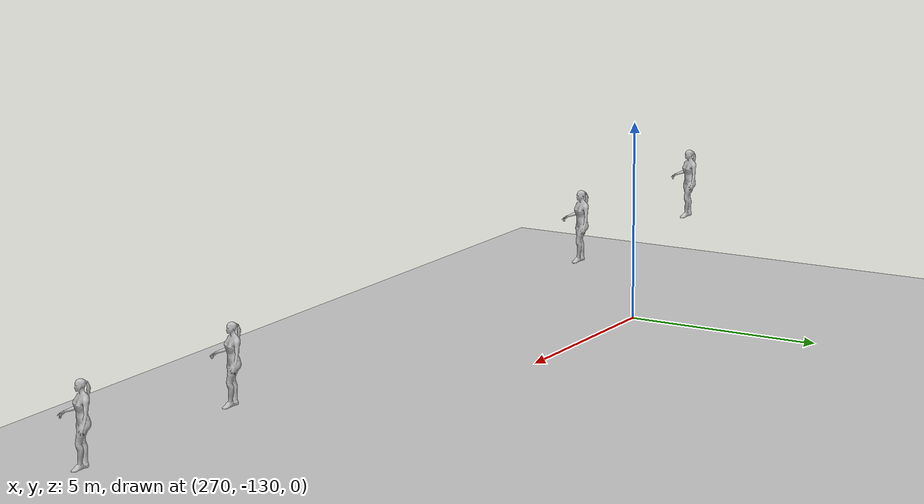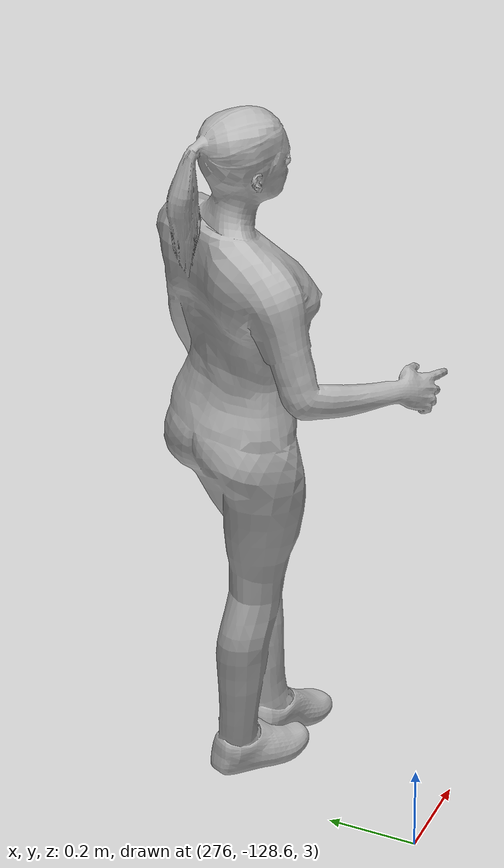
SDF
<sdf version="1.12">
 <world name="new_custom_world_v3">
  <physics type="ode">
   <max_step_size>0.0040000000000000001</max_step_size>
   <real_time_factor>1</real_time_factor>
   <real_time_update_rate>250</real_time_update_rate>
  </physics>
  <gravity>0 0 -9.8000000000000007</gravity>
  <magnetic_field>6.0000000000000002e-06 2.3e-05 -4.1999999999999998e-05</magnetic_field>
  <atmosphere type="adiabatic"/>
  <scene>
   <grid>false</grid>
   <ambient>0.400000006 0.400000006 0.400000006 1</ambient>
   <background>0.699999988 0.699999988 0.699999988 1</background>
   <shadows>true</shadows>
  </scene>
  <spherical_coordinates>
   <surface_model>EARTH_WGS84</surface_model>
   <world_frame_orientation>ENU</world_frame_orientation>
   <latitude_deg>47.397971057728974</latitude_deg>
   <longitude_deg>8.5461637398001464</longitude_deg>
   <elevation>0</elevation>
   <heading_deg>0</heading_deg>
  </spherical_coordinates>
  <model name="ground_plane">
   <static>true</static>
   <link name="link">
    <collision name="collision">
     <geometry><plane><normal>0 0 1</normal><size>1 1</size></plane></geometry>
    </collision>
    <visual name="visual">
     <geometry><plane><normal>0 0 1</normal><size>100 100</size></plane></geometry>
     <material>
      <ambient>0.800000012 0.800000012 0.800000012 1</ambient>
      <diffuse>0.800000012 0.800000012 0.800000012 1</diffuse>
      <specular>0.800000012 0.800000012 0.800000012 1</specular>
     </material>
    </visual>
    <inertial>
     <mass>1</mass>
     <inertia><ixx>1</ixx><ixy>0</ixy><ixz>0</ixz><iyy>1</iyy><iyz>0</iyz><izz>1</izz></inertia>
    </inertial>
   </link>
  </model>
  <include>
   <uri>file:///home/sstarokozhev/PX4-Autopilot/Tools/simulation/gz/models/casual_female</uri>
   <name>female_1</name>
   <pose>276.17999267578125 -128.10200500488281 2.9636299610137939 0 0 1.0163669196705514</pose>
  </include>
  <include>
   <uri>file:///home/sstarokozhev/PX4-Autopilot/Tools/simulation/gz/models/casual_female</uri>
   <name>female_1_1</name>
   <pose>294.33717974419278 -128.10200500488281 2.9636299610137939 0 0 1.0163700170087691</pose>
  </include>
  <include>
   <uri>file:///home/sstarokozhev/PX4-Autopilot/Tools/simulation/gz/models/casual_female</uri>
   <name>female_1_1_1</name>
   <pose>289.80876289846617 -128.10200500488281 2.9636299610137939 0 0 1.0163700170087691</pose>
  </include>
  <include>
   <uri>file:///home/sstarokozhev/PX4-Autopilot/Tools/simulation/gz/models/casual_female</uri>
   <name>female_1_1_2</name>
   <pose>270.71909887311438 -128.10200500488281 2.9636299610137939 0 0 1.0163700170087691</pose>
  </include>
  <light name="sunUTC" type="directional">
   <pose>0 0 500 0 0 0</pose>
   <intensity>1</intensity>
   <direction>0.001 0.625 -0.78000000000000003</direction>
   <diffuse>0.903999984 0.903999984 0.903999984 1</diffuse>
   <specular>0.270999998 0.270999998 0.270999998 1</specular>
   <attenuation><range>2000</range><linear>0</linear><constant>1</constant><quadratic>0</quadratic></attenuation>
   <spot><inner_angle>0</inner_angle><outer_angle>0</outer_angle><falloff>0</falloff></spot>
  </light>
 </world>
</sdf>

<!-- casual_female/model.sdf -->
<sdf version="1.5">
  <model name="casual_female">
    <static>true</static>
    <link name="link">
      <collision name="box">
        <pose>0 0 0.9 0 0 0</pose>
        <geometry>
          <box>
            <size>0.76 0.33 1.77</size>
          </box>
        </geometry>
      </collision>
      <visual name="visual">
        <pose>0 0 0.02 0.04 0 0</pose>
        <geometry>
          <mesh>
            <uri>model://casual_female/meshes/casual_female.dae</uri>
          </mesh>
        </geometry>
      </visual>
    </link>
  </model>
</sdf>
